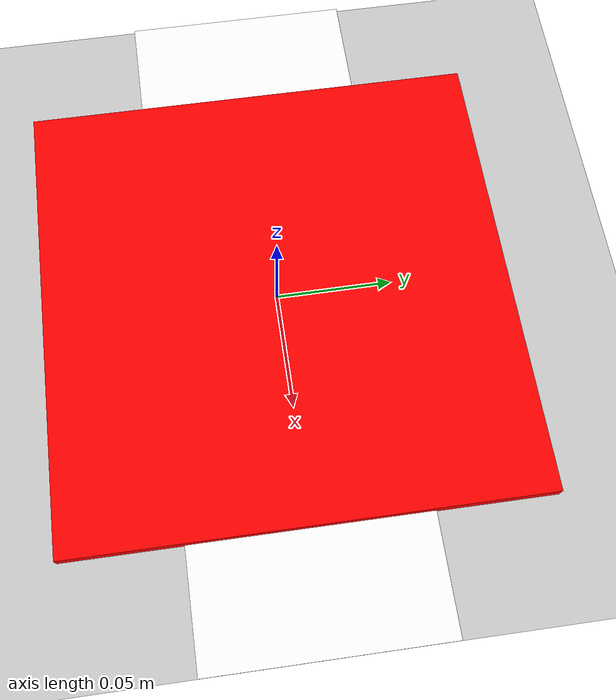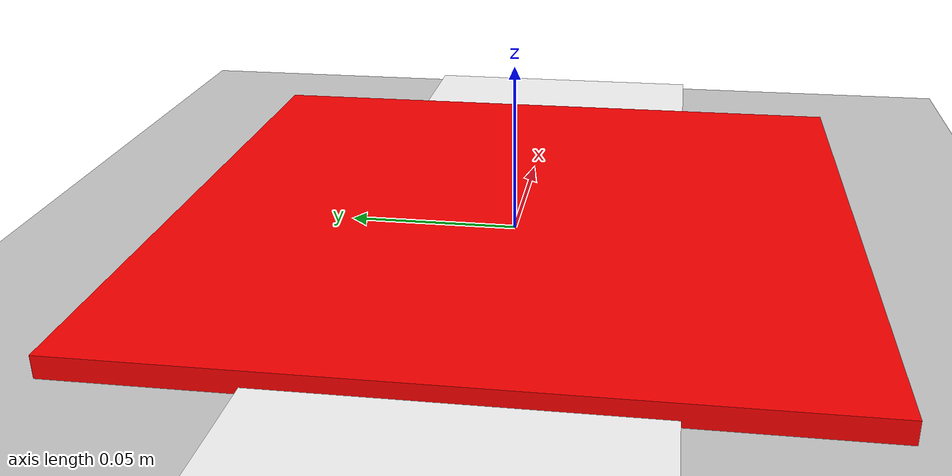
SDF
<?xml version="1.0" ?>
<sdf version="1.6">
    <world name="line_following_world">
        <!-- Physics settings optimized for robot simulation -->
        <physics type="ode">
            <max_step_size>0.001</max_step_size>
            <real_time_factor>1.0</real_time_factor>
            <real_time_update_rate>1000</real_time_update_rate>
            <gravity>0 0 -9.81</gravity>
        </physics>

        <!--ground-->
        <include>
            <uri>model://ground_plane</uri>
        </include>

        <!--light-->
        <include>
            <uri>model://sun</uri>
        </include>

        <!-- White line made from simple box geometry -->
        <model name="white_line">
            <static>true</static>
            <pose>0 0 0.001 0 0 0</pose>  <!-- Slightly above ground to avoid z-fighting -->
            <link name="line_link">
                <visual name="visual">
                    <geometry>
                        <box>
                            <size>10 0.1 0.001</size>  <!-- width: 10cm, length: 10m, height: 1mm -->
                        </box>
                    </geometry>
                    <material>
                        <ambient>1 1 1 1</ambient>
                        <diffuse>1 1 1 1</diffuse>
                        <specular>1 1 1 1</specular>
                    </material>
                </visual>
                <!-- No collision needed for visual-only line -->
            </link>
        </model>

        <!-- Starting position marker -->
        <model name="start_marker">
            <static>true</static>
            <pose>0 0 0.001 0 0 0</pose>
            <link name="link">
                <visual name="visual">
                    <geometry>
                        <box>
                            <size>0.2 0.2 0.01</size>
                        </box>
                    </geometry>
                    <material>
                        <ambient>1 0 0 1</ambient>
                        <diffuse>1 0 0 1</diffuse>
                        <specular>1 0 0 1</specular>
                    </material>
                </visual>
            </link>
        </model>

    </world>
</sdf>
